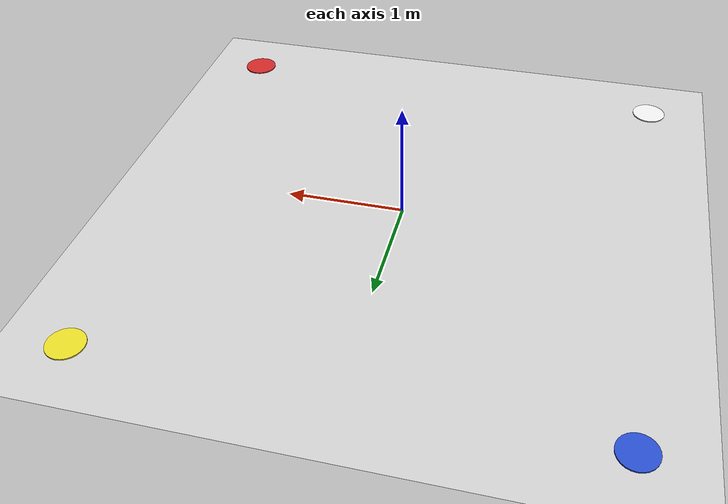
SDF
<sdf version="1.6">
 <world name="default">
  <include><uri>model://ground_plane</uri></include>
  <include><uri>model://sun</uri></include>
  <scene><shadows>false</shadows></scene>
  <physics type="ode">
   <real_time_update_rate>1000.0</real_time_update_rate>
   <max_step_size>0.001</max_step_size>
   <real_time_factor>1</real_time_factor>
   <ode>
    <solver>
     <type>quick</type>
     <iters>150</iters>
     <precon_iters>0</precon_iters>
     <sor>1.400000</sor>
     <use_dynamic_moi_rescaling>1</use_dynamic_moi_rescaling>
    </solver>
    <constraints>
     <cfm>0.00001</cfm>
     <erp>0.2</erp>
     <contact_max_correcting_vel>2000.000000</contact_max_correcting_vel>
     <contact_surface_layer>0.01000</contact_surface_layer>
    </constraints>
   </ode>
  </physics>
  <model name="ros_symbol">
   <static>1</static>
   <link name="symbol">
    <visual name="one_one">
     <pose>-2.0 -2.0 0.0 0 0 0</pose>
     <geometry><cylinder><radius>0.15</radius><length>0.01</length></cylinder></geometry>
     <material>
      <script><uri>file://media/materials/scripts/gazebo.material</uri><name>Gazebo/White</name></script>
     </material>
    </visual>
    <visual name="one_two">
     <pose>2.0 -2.0 0.0 0 0 0</pose>
     <geometry><cylinder><radius>0.15</radius><length>0.01</length></cylinder></geometry>
     <material>
      <script><uri>file://media/materials/scripts/gazebo.material</uri><name>Gazebo/Red</name></script>
     </material>
    </visual>
    <visual name="one_three">
     <pose>2.0 2.0 0.0 0 0 0</pose>
     <geometry><cylinder><radius>0.15</radius><length>0.01</length></cylinder></geometry>
     <material>
      <script><uri>file://media/materials/scripts/gazebo.material</uri><name>Gazebo/Yellow</name></script>
     </material>
    </visual>
    <visual name="one_four">
     <pose>-2.0 2.0 0.0 0 0 0</pose>
     <geometry><cylinder><radius>0.15</radius><length>0.01</length></cylinder></geometry>
     <material>
      <script><uri>file://media/materials/scripts/gazebo.material</uri><name>Gazebo/Blue</name></script>
     </material>
    </visual>
   </link>
  </model>
 </world>
</sdf>
